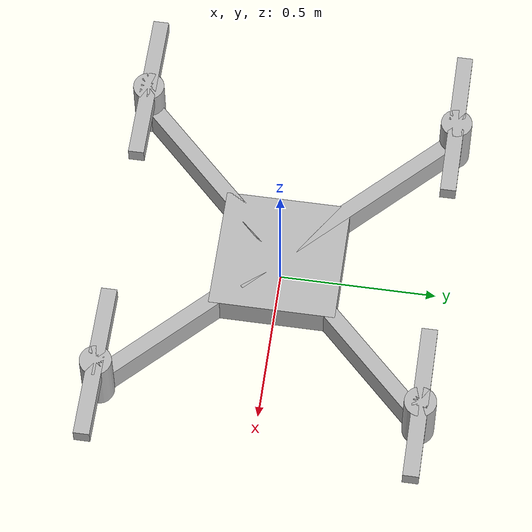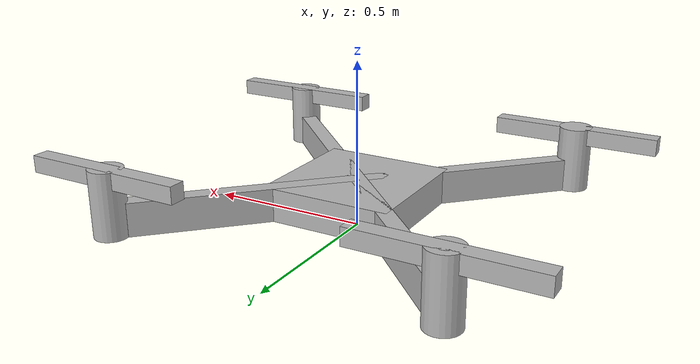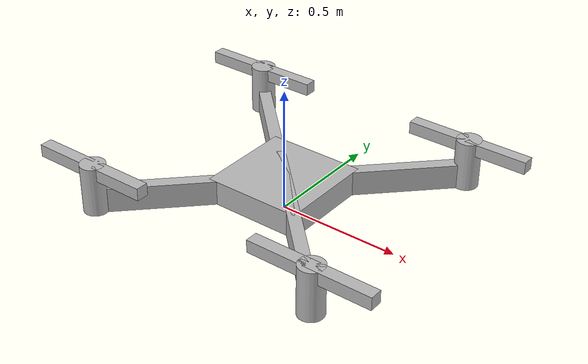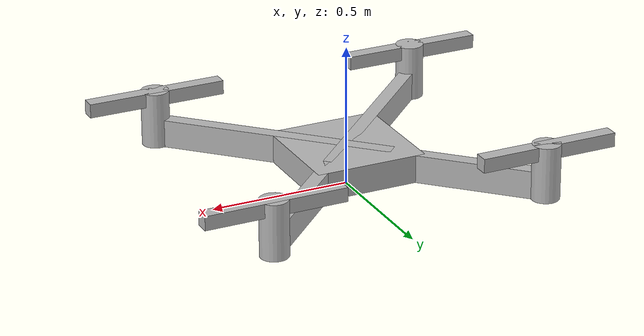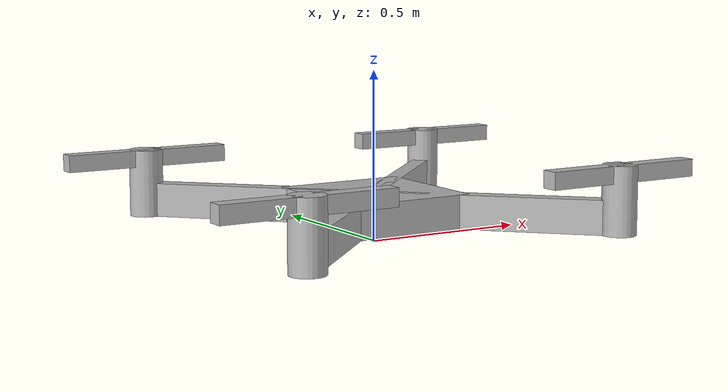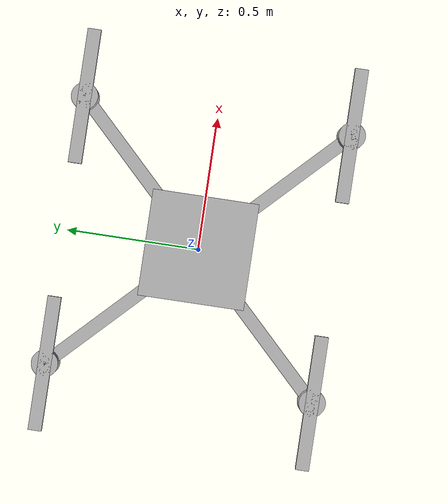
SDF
<?xml version="1.0" ?>
<sdf version="1.6">
    <model name="ms_quadcopter">
    <static>false</static>

    <link name="base">
        <pose>0 0 .1 0 0 0</pose>

        <collision name="collision">
            <geometry>
                <box>
                    <size>.4 .4 .1</size>
                </box>
            </geometry>
        </collision>

        <visual name="visual">
            <geometry>
                <box>
                    <size>.4 .4 .1</size>
                </box>
            </geometry>
        </visual>
    </link>

    <link name="wing1">
        <pose>.2 .2 .1 0 0 0.7854</pose>

        <collision name="collision">
            <geometry>
                <box>
                    <size>.9 .05 .1</size>
                </box>
            </geometry>
        </collision>

        <visual name="visual">
            <geometry>
                <box>
                    <size>.9 .05 .1</size>
                </box>
            </geometry>
        </visual>
    </link>

    <link name="wing2">
        <pose>-.2 .2 .1 0 0 -0.7854</pose>

        <collision name="collision">
            <geometry>
                <box>
                    <size>.9 .05 .1</size>
                </box>
            </geometry>
        </collision>

        <visual name="visual">
            <geometry>
                <box>
                    <size>.9 .05 .1</size>
                </box>
            </geometry>
        </visual>
    </link>

    <link name="wing3">
        <pose>.2 -.2 .1 0 0 -0.7854</pose>

        <collision name="collision">
            <geometry>
                <box>
                    <size>.9 .05 .1</size>
                </box>
            </geometry>
        </collision>

        <visual name="visual">
            <geometry>
                <box>
                    <size>.9 .05 .1</size>
                </box>
            </geometry>
        </visual>
    </link>

    <link name="wing4">
        <pose>-.2 -.2 .1 0 0 0.7854</pose>

        <collision name="collision">
            <geometry>
                <box>
                    <size>.9 .05 .1</size>
                </box>
            </geometry>
        </collision>

        <visual name="visual">
            <geometry>
                <box>
                    <size>.9 .05 .1</size>
                </box>
            </geometry>
        </visual>
    </link>

    <link name="motor1">
        <pose>.5 .5 .15 0 0 0</pose>

        <collision name="collision">
            <geometry>
                <cylinder>
                    <radius>.05</radius>
                    <length>.2</length>
                </cylinder>
            </geometry>
        </collision>

        <visual name="visual">
            <geometry>
                <cylinder>
                    <radius>.05</radius>
                    <length>.2</length>
                </cylinder>
            </geometry>
        </visual>
    </link>

    <link name="motor2">
        <pose>-.5 .5 .15 0 0 0</pose>

        <collision name="collision">
            <geometry>
                <cylinder>
                    <radius>.05</radius>
                    <length>.2</length>
                </cylinder>
            </geometry>
        </collision>

        <visual name="visual">
            <geometry>
                <cylinder>
                    <radius>.05</radius>
                    <length>.2</length>
                </cylinder>
            </geometry>
        </visual>
    </link>

    <link name="motor3">
        <pose>-.5 -.5 .15 0 0 0</pose>

        <collision name="collision">
            <geometry>
                <cylinder>
                    <radius>.05</radius>
                    <length>.2</length>
                </cylinder>
            </geometry>
        </collision>

        <visual name="visual">
            <geometry>
                <cylinder>
                    <radius>.05</radius>
                    <length>.2</length>
                </cylinder>
            </geometry>
        </visual>
    </link>

    <link name="motor4">
        <pose>.5 -.5 .15 0 0 0</pose>

        <collision name="collision">
            <geometry>
                <cylinder>
                    <radius>.05</radius>
                    <length>.2</length>
                </cylinder>
            </geometry>
        </collision>

        <visual name="visual">
            <geometry>
                <cylinder>
                    <radius>.05</radius>
                    <length>.2</length>
                </cylinder>
            </geometry>
        </visual>
    </link>

    <link name="propeller1">
        <pose>.5 .5 .225 0 0 0</pose>

        <collision name="collision">
            <geometry>
                <box>
                    <size>.5 .05 .05</size>
                </box>
            </geometry>
        </collision>

        <visual name="visual">
            <geometry>
                <box>
                    <size>.5 .05 .05</size>
                </box>
            </geometry>
        </visual>
    </link>

    <link name="propeller2">
        <pose>-.5 .5 .225 0 0 0</pose>

        <collision name="collision">
            <geometry>
                <box>
                    <size>.5 .05 .05</size>
                </box>
            </geometry>
        </collision>

        <visual name="visual">
            <geometry>
                <box>
                    <size>.5 .05 .05</size>
                </box>
            </geometry>
        </visual>
    </link>

    <link name="propeller3">
        <pose>-.5 -.5 .225 0 0 0</pose>

        <collision name="collision">
            <geometry>
                <box>
                    <size>.5 .05 .05</size>
                </box>
            </geometry>
        </collision>

        <visual name="visual">
            <geometry>
                <box>
                    <size>.5 .05 .05</size>
                </box>
            </geometry>
        </visual>
    </link>

     <link name="propeller4">
        <pose>.5 -.5 .225 0 0 0</pose>

        <collision name="collision">
            <geometry>
                <box>
                    <size>.5 .05 .05</size>
                </box>
            </geometry>
        </collision>

        <visual name="visual">
            <geometry>
                <box>
                    <size>.5 .05 .05</size>
                </box>
            </geometry>
        </visual>
    </link>

    <joint type="revolute" name="w1">
        <pose> 0 0 0 0 0 0</pose>
        <child>propeller1</child>
        <parent>motor1</parent>
        <axis>
            <xyz>0 0 1</xyz>
        </axis>
    </joint>

    <joint type="revolute" name="w2">
        <pose> 0 0 0 0 0 0</pose>
        <child>propeller2</child>
        <parent>motor2</parent>
        <axis>
            <xyz>0 0 1</xyz>
        </axis>
    </joint>

    <joint type="revolute" name="w3">
        <pose> 0 0 0 0 0 0</pose>
        <child>propeller3</child>
        <parent>motor3</parent>
        <axis>
            <xyz>0 0 1</xyz>
        </axis>
     </joint>

     <joint type="revolute" name="w4">
        <pose> 0 0 0 0 0 0</pose>
        <child>propeller4</child>
        <parent>motor4</parent>
        <axis>
            <xyz>0 0 1</xyz>
        </axis>
     </joint>

     <joint type="revolute" name="wm1">
        <pose> 0 0 0 0 0 0</pose>
        <child>motor1</child>
        <parent>wing1</parent>
        <axis>
            <xyz>0 0 1</xyz>

            <limit>
                <lower>0</lower>
                <upper>0</upper>
            </limit>
        </axis>
     </joint>

     <joint type="revolute" name="wm2">
        <pose> 0 0 0 0 0 0</pose>
        <child>motor2</child>
        <parent>wing2</parent>
        <axis>
            <xyz>0 0 1</xyz>

            <limit>
                <lower>0</lower>
                <upper>0</upper>
            </limit>
        </axis>
     </joint>

     <joint type="revolute" name="wm3">
        <pose> 0 0 0 0 0 0</pose>
        <child>motor3</child>
        <parent>wing3</parent>
        <axis>
            <xyz>0 0 1</xyz>

            <limit>
                <lower>0</lower>
                <upper>0</upper>
            </limit>
        </axis>
     </joint>

     <joint type="revolute" name="wm4">
        <pose> 0 0 0 0 0 0</pose>
        <child>motor4</child>
        <parent>wing4</parent>
        <axis>
            <xyz>0 0 1</xyz>

            <limit>
                <lower>0</lower>
                <upper>0</upper>
            </limit>
        </axis>
     </joint>

     <joint type="revolute" name="bw1">
        <pose> 0 0 0 0 0 0</pose>
        <child>wing1</child>
        <parent>base</parent>
        <axis>
            <xyz>0 0 1</xyz>

            <limit>
                <lower>0</lower>
                <upper>0</upper>
            </limit>
        </axis>
     </joint>

     <joint type="revolute" name="bw2">
        <pose> 0 0 0 0 0 0</pose>
        <child>wing2</child>
        <parent>base</parent>
        <axis>
            <xyz>0 0 1</xyz>

            <limit>
                <lower>0</lower>
                <upper>0</upper>
            </limit>
        </axis>
     </joint>

     <joint type="revolute" name="bw3">
        <pose> 0 0 0 0 0 0</pose>
        <child>wing3</child>
        <parent>base</parent>
        <axis>
            <xyz>0 0 1</xyz>

            <limit>
                <lower>0</lower>
                <upper>0</upper>
            </limit>
        </axis>
     </joint>

     <joint type="revolute" name="bw4">
        <pose> 0 0 0 0 0 0</pose>
        <child>wing4</child>
        <parent>base</parent>
        <axis>
            <xyz>0 0 1</xyz>

            <limit>
                <lower>0</lower>
                <upper>0</upper>
            </limit>
        </axis>
     </joint>

</model>
</sdf>
